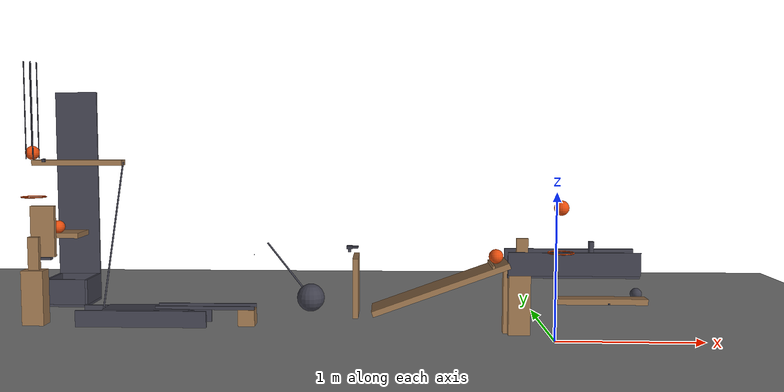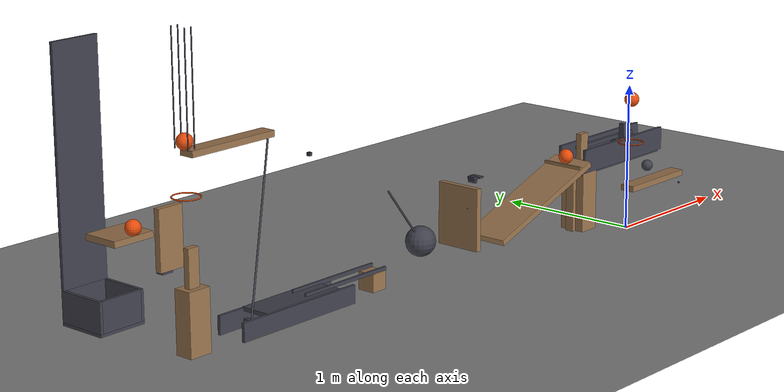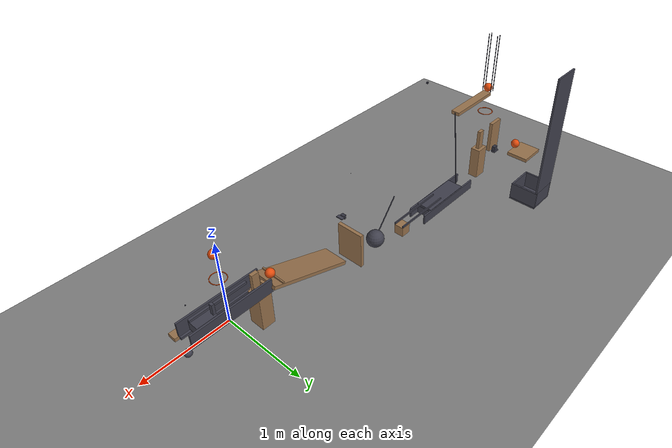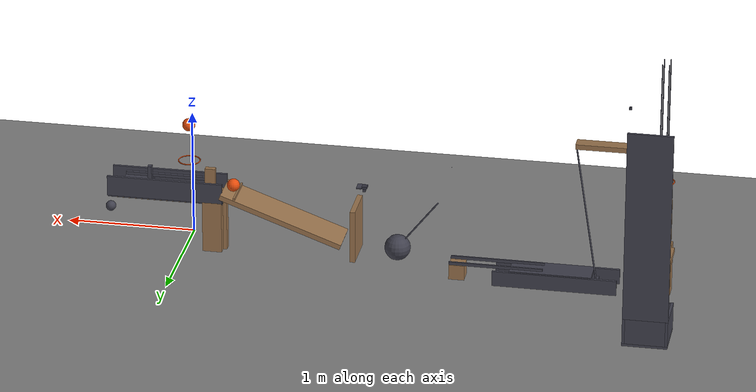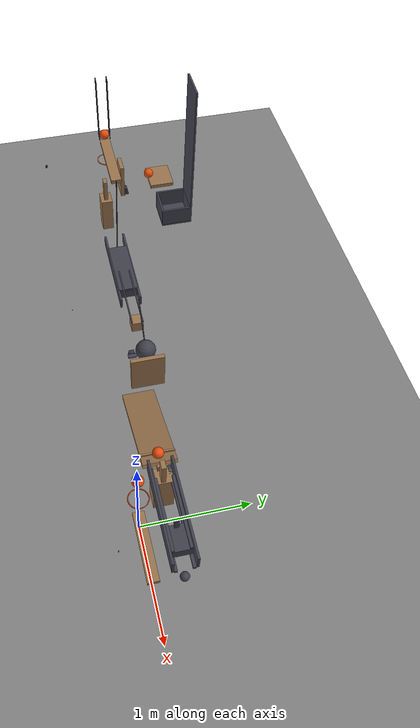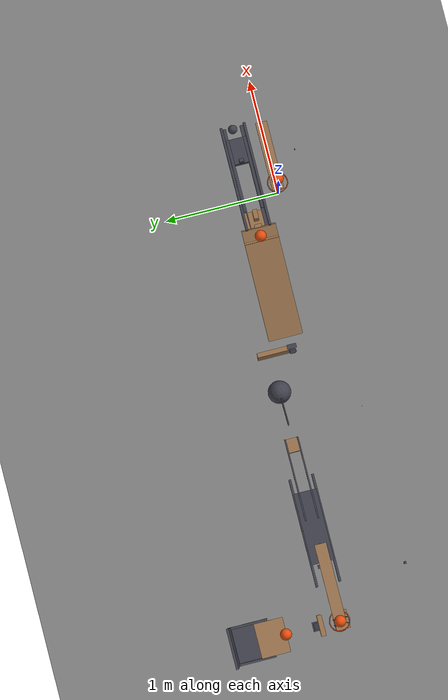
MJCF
<mujoco model="restrained_cascade_revision">
  <compiler angle="radian"/>
  <option timestep="0.002"/>
  <worldbody>
    <geom name="floor" type="plane" size="10 10 0.1" friction="0.72 0.005 0.002"/>
    <body name="ring1">
      <geom name="ring1_rim_00" type="capsule" size="0.004" fromto="0.115646 0 0.6 0.109126 0.0327752 0.6" friction="0.72 0.005 0.0001" solref="0.01 1" rgba="0.9 0.3 0.05 1"/>
      <geom name="ring1_rim_01" type="capsule" size="0.004" fromto="0.109126 0.0327752 0.6 0.0905606 0.0605606 0.6" friction="0.72 0.005 0.0001" solref="0.01 1" rgba="0.9 0.3 0.05 1"/>
      <geom name="ring1_rim_02" type="capsule" size="0.004" fromto="0.0905606 0.0605606 0.6 0.0627752 0.0791263 0.6" friction="0.72 0.005 0.0001" solref="0.01 1" rgba="0.9 0.3 0.05 1"/>
      <geom name="ring1_rim_03" type="capsule" size="0.004" fromto="0.0627752 0.0791263 0.6 0.03 0.0856457 0.6" friction="0.72 0.005 0.0001" solref="0.01 1" rgba="0.9 0.3 0.05 1"/>
      <geom name="ring1_rim_04" type="capsule" size="0.004" fromto="0.03 0.0856457 0.6 -0.00277517 0.0791263 0.6" friction="0.72 0.005 0.0001" solref="0.01 1" rgba="0.9 0.3 0.05 1"/>
      <geom name="ring1_rim_05" type="capsule" size="0.004" fromto="-0.00277517 0.0791263 0.6 -0.0305606 0.0605606 0.6" friction="0.72 0.005 0.0001" solref="0.01 1" rgba="0.9 0.3 0.05 1"/>
      <geom name="ring1_rim_06" type="capsule" size="0.004" fromto="-0.0305606 0.0605606 0.6 -0.0491263 0.0327752 0.6" friction="0.72 0.005 0.0001" solref="0.01 1" rgba="0.9 0.3 0.05 1"/>
      <geom name="ring1_rim_07" type="capsule" size="0.004" fromto="-0.0491263 0.0327752 0.6 -0.0556457 0 0.6" friction="0.72 0.005 0.0001" solref="0.01 1" rgba="0.9 0.3 0.05 1"/>
      <geom name="ring1_rim_08" type="capsule" size="0.004" fromto="-0.0556457 0 0.6 -0.0491263 -0.0327752 0.6" friction="0.72 0.005 0.0001" solref="0.01 1" rgba="0.9 0.3 0.05 1"/>
      <geom name="ring1_rim_09" type="capsule" size="0.004" fromto="-0.0491263 -0.0327752 0.6 -0.0305606 -0.0605606 0.6" friction="0.72 0.005 0.0001" solref="0.01 1" rgba="0.9 0.3 0.05 1"/>
      <geom name="ring1_rim_10" type="capsule" size="0.004" fromto="-0.0305606 -0.0605606 0.6 -0.00277517 -0.0791263 0.6" friction="0.72 0.005 0.0001" solref="0.01 1" rgba="0.9 0.3 0.05 1"/>
      <geom name="ring1_rim_11" type="capsule" size="0.004" fromto="-0.00277517 -0.0791263 0.6 0.03 -0.0856457 0.6" friction="0.72 0.005 0.0001" solref="0.01 1" rgba="0.9 0.3 0.05 1"/>
      <geom name="ring1_rim_12" type="capsule" size="0.004" fromto="0.03 -0.0856457 0.6 0.0627752 -0.0791263 0.6" friction="0.72 0.005 0.0001" solref="0.01 1" rgba="0.9 0.3 0.05 1"/>
      <geom name="ring1_rim_13" type="capsule" size="0.004" fromto="0.0627752 -0.0791263 0.6 0.0905606 -0.0605606 0.6" friction="0.72 0.005 0.0001" solref="0.01 1" rgba="0.9 0.3 0.05 1"/>
      <geom name="ring1_rim_14" type="capsule" size="0.004" fromto="0.0905606 -0.0605606 0.6 0.109126 -0.0327752 0.6" friction="0.72 0.005 0.0001" solref="0.01 1" rgba="0.9 0.3 0.05 1"/>
      <geom name="ring1_rim_15" type="capsule" size="0.004" fromto="0.109126 -0.0327752 0.6 0.115646 0 0.6" friction="0.72 0.005 0.0001" solref="0.01 1" rgba="0.9 0.3 0.05 1"/>
    </body>
    <body name="lever1" pos="0.3 0 0.28">
      <joint name="lever1_hinge" type="hinge" pos="0 0 0" axis="0 1 0" limited="true" range="-0.785398 0" damping="0.04"/>
      <geom name="lever1" type="box" pos="0 0 0" size="0.3 0.05 0.02" mass="0.5" friction="0.72 0.005 0.0001" solref="0.01 1" rgba="0.6 0.45 0.3 1"/>
      <geom name="lever gravity assist" type="box" pos="2e-05 -0.22 0.02" size="0.005 0.005 0.005" mass="600" friction="0.72 0.005 0.0001" solref="0.01 1" rgba="0.2 0.2 0.25 1"/>
      <geom name="lever striking head" type="sphere" pos="0.3 0.25 0" size="0.04" mass="0.005" friction="0.72 0.005 0.0001" solref="0.01 1" rgba="0.25 0.25 0.3 1"/>
    </body>
    <body name="ball1" pos="0.03 0 0.9">
      <freejoint/>
      <geom name="ball1" type="sphere" pos="0 0 0" size="0.05" mass="0.2" condim="6" friction="0.72 0.005 0.0001" solref="0.01 1" rgba="0.9 0.3 0.05 1"/>
    </body>
    <body name="cart1 left runner">
      <geom name="cart1 left runner" type="box" pos="0.15 0.324 0.4125" size="0.45 0.013 0.0125" friction="0.72 0.005 0.0001" solref="0.01 1" rgba="0.25 0.25 0.3 1"/>
    </body>
    <body name="cart1 right runner">
      <geom name="cart1 right runner" type="box" pos="0.15 0.176 0.4125" size="0.45 0.013 0.0125" friction="0.72 0.005 0.0001" solref="0.01 1" rgba="0.25 0.25 0.3 1"/>
    </body>
    <body name="cart1 left guide">
      <geom name="cart1 left guide" type="box" pos="0.15 0.351 0.5" size="0.45 0.01 0.08" friction="0.72 0.005 0.0001" solref="0.01 1" rgba="0.25 0.25 0.3 1"/>
    </body>
    <body name="cart1 right guide">
      <geom name="cart1 right guide" type="box" pos="0.15 0.149 0.5" size="0.45 0.01 0.08" friction="0.72 0.005 0.0001" solref="0.01 1" rgba="0.25 0.25 0.3 1"/>
    </body>
    <body name="cart1 left roof">
      <geom name="cart1 left roof" type="box" pos="0.175 0.325 0.5395" size="0.315 0.013 0.0125" friction="0.72 0.005 0.0001" solref="0.01 1" rgba="0.25 0.25 0.3 1"/>
    </body>
    <body name="cart1 right roof">
      <geom name="cart1 right roof" type="box" pos="0.175 0.175 0.5395" size="0.315 0.013 0.0125" friction="0.72 0.005 0.0001" solref="0.01 1" rgba="0.25 0.25 0.3 1"/>
    </body>
    <body name="cart1" pos="0.38 0.25 0.475">
      <freejoint/>
      <geom name="cart1" type="box" pos="0 0 0" size="0.11 0.09 0.05" mass="0.5" friction="0.72 0.005 0.0001" solref="0.01 1" rgba="0.25 0.25 0.3 1"/>
      <geom name="cart1 striking mast" type="box" pos="-0.095 0 0.11" size="0.015 0.02 0.06" mass="0.005" friction="0.72 0.005 0.0001" solref="0.01 1" rgba="0.25 0.25 0.3 1"/>
    </body>
    <body name="domino1 pedestal">
      <geom name="domino1 pedestal" type="box" pos="-0.215 0.25 0.2125" size="0.075 0.09 0.2125" friction="0.72 0.005 0.0001" solref="0.01 1" rgba="0.6 0.45 0.3 1"/>
    </body>
    <body name="domino1" pos="-0.19 0.25 0.545">
      <freejoint/>
      <geom name="domino1" type="box" pos="0 0 0" size="0.04 0.02 0.12" mass="0.25" friction="0.72 0.005 0.0001" solref="0.01 1" rgba="0.6 0.45 0.3 1"/>
    </body>
    <body name="ramp1">
      <geom name="ramp1_deck" type="box" pos="-0.759846 0.25 0.32101" size="0.5 0.15 0.02" euler="0 2.79253 0" friction="0.72 0.005 0.0001" solref="0.01 1" rgba="0.6 0.45 0.3 1"/>
      <geom name="ramp1_leg" type="box" pos="-0.29 0.25 0.24601" size="0.03 0.03 0.24601" friction="0.72 0.005 0.0001" solref="0.01 1" rgba="0.6 0.45 0.3 1"/>
    </body>
    <body name="ball2 retaining lip">
      <geom name="ball2 retaining lip" type="box" pos="-0.402 0.25 0.483" size="0.008 0.15 0.01" friction="0.72 0.005 0.0001" solref="0.01 1" rgba="0.6 0.45 0.3 1"/>
    </body>
    <body name="ball2" pos="-0.37 0.25 0.5374">
      <freejoint/>
      <geom name="ball2" type="sphere" pos="0 0 0" size="0.05" mass="0.2" condim="6" friction="0.72 0.005 0.0001" solref="0.01 1" rgba="0.9 0.3 0.05 1"/>
    </body>
    <body name="door1" pos="-1.34969 0.53 0.31">
      <joint name="door1_hinge" type="hinge" pos="0 0 0" axis="0 0 1" limited="true" range="-1.22173 0" stiffness="3.4" springref="-1.74533" damping="0.04"/>
      <geom name="door1" type="box" pos="0 -0.16 0" size="0.02 0.16 0.21" mass="0.45" friction="0.72 0.005 0.0001" solref="0.01 1" rgba="0.6 0.45 0.3 1"/>
      <geom name="door latch tab" type="box" pos="0 -0.3 0.29" size="0.02 0.04 0.005" mass="0.001" friction="0.72 0.005 0.0001" solref="0.01 1" rgba="0.25 0.25 0.3 1"/>
    </body>
    <body name="door latch pedestal">
      <geom name="door latch pedestal" type="box" pos="-1.38969 0.23 0.58" size="0.01 0.03 0.01" friction="0.72 0.005 0.0001" solref="0.01 1" rgba="0.25 0.25 0.3 1"/>
    </body>
    <body name="door latch" pos="-1.38969 0.23 0.6">
      <freejoint/>
      <geom name="door latch" type="box" pos="0 0 0" size="0.02 0.025 0.01" mass="3" friction="0.72 0.005 0.0001" solref="0.01 1" rgba="0.2 0.2 0.25 1"/>
    </body>
    <body name="pendulum1" pos="-1.9878 0.42 0.6">
      <joint name="pendulum1_hinge" type="hinge" pos="0 0 0" axis="0 1 0" limited="true" range="0 0.663225" damping="0.04"/>
      <geom name="pendulum1" type="sphere" pos="0.307831 0 -0.394005" size="0.1" mass="0.33" friction="0.72 0.005 0.0001" solref="0.01 1" rgba="0.25 0.25 0.3 1"/>
      <geom name="pendulum rod" type="capsule" size="0.006" fromto="0 0 0 0.307831 0 -0.394005" mass="0.02" friction="0.72 0.005 0.0001" solref="0.01 1" rgba="0.25 0.25 0.3 1"/>
      <geom name="pendulum gravity assist" type="box" pos="-4.4e-05 -0.64 0.01" size="0.002 0.002 0.002" mass="2500" friction="0.72 0.005 0.0001" solref="0.01 1" rgba="0.2 0.2 0.25 1"/>
    </body>
    <body name="block1 left roof">
      <geom name="block1 left roof" type="box" pos="-2.4438 0.475 0.1345" size="0.36 0.006 0.0125" friction="0.72 0.005 0.0001" solref="0.01 1" rgba="0.25 0.25 0.3 1"/>
    </body>
    <body name="block1 right roof">
      <geom name="block1 right roof" type="box" pos="-2.4438 0.365 0.1345" size="0.36 0.006 0.0125" friction="0.72 0.005 0.0001" solref="0.01 1" rgba="0.25 0.25 0.3 1"/>
    </body>
    <body name="block1" pos="-2.1438 0.42 0.06">
      <freejoint/>
      <geom name="block1" type="box" pos="0 0 0" size="0.06 0.06 0.06" mass="0.35" friction="0.72 0.005 0.0001" solref="0.01 1" rgba="0.6 0.45 0.3 1"/>
    </body>
    <body name="cart2 left guide">
      <geom name="cart2 left guide" type="box" pos="-2.9 0.521 0.06" size="0.475 0.01 0.06" friction="0.72 0.005 0.0001" solref="0.01 1" rgba="0.25 0.25 0.3 1"/>
    </body>
    <body name="cart2 right guide">
      <geom name="cart2 right guide" type="box" pos="-2.9 0.319 0.06" size="0.475 0.01 0.06" friction="0.72 0.005 0.0001" solref="0.01 1" rgba="0.25 0.25 0.3 1"/>
    </body>
    <body name="cart2 roof">
      <geom name="cart2 roof" type="box" pos="-2.8669 0.42 0.1145" size="0.3131 0.1 0.0125" friction="0.72 0.005 0.0001" solref="0.01 1" rgba="0.25 0.25 0.3 1"/>
    </body>
    <body name="cart2" pos="-2.6638 0.42 0.05">
      <freejoint/>
      <geom name="cart2" type="box" pos="0 0 0" size="0.11 0.09 0.05" mass="0.5" friction="0.72 0.005 0.0001" solref="0.01 1" rgba="0.25 0.25 0.3 1"/>
    </body>
    <body name="seesaw1" pos="-3.3588 0.42 1.18">
      <joint name="seesaw1_hinge" type="hinge" pos="0 0 0" axis="0 1 0" limited="true" range="0 0.733038" damping="0.04"/>
      <geom name="seesaw1" type="box" pos="0 0 0" size="0.325 0.05 0.02" mass="0.55" friction="0.72 0.005 0.0001" solref="0.01 1" rgba="0.6 0.45 0.3 1"/>
      <geom name="seesaw input rod" type="capsule" size="0.006" fromto="0.325 0 0 0.15 0 -1.13" mass="0.01" friction="0.72 0.005 0.0001" solref="0.01 1" rgba="0.25 0.25 0.3 1"/>
      <geom name="seesaw input pad" type="box" pos="0.15 0 -1.13" size="0.015 0.05 0.025" mass="0.005" friction="0.72 0.005 0.0001" solref="0.01 1" rgba="0.25 0.25 0.3 1"/>
      <geom name="seesaw gravity assist" type="box" pos="0.0005 -0.64 0.04" size="0.01 0.01 0.01" mass="100" friction="0.72 0.005 0.0001" solref="0.01 1" rgba="0.2 0.2 0.25 1"/>
    </body>
    <body name="ball3" pos="-3.6938 0.42 1.25">
      <freejoint/>
      <geom name="ball3" type="sphere" pos="0 0 0" size="0.05" mass="0.2" condim="6" friction="0.72 0.005 0.0001" solref="0.01 1" rgba="0.9 0.3 0.05 1"/>
    </body>
    <body name="ball3 guide">
      <geom name="ball3 guide_near_left_rail" type="capsule" size="0.004" fromto="-3.7188 0.4735 1.21 -3.7188 0.4735 1.9" friction="0.72 0.005 0.0001" solref="0.01 1" rgba="0.25 0.25 0.3 1"/>
      <geom name="ball3 guide_near_right_rail" type="capsule" size="0.004" fromto="-3.7188 0.3665 1.21 -3.7188 0.3665 1.9" friction="0.72 0.005 0.0001" solref="0.01 1" rgba="0.25 0.25 0.3 1"/>
      <geom name="ball3 guide_far_left_rail" type="capsule" size="0.004" fromto="-3.6688 0.4735 1.21 -3.6688 0.4735 1.9" friction="0.72 0.005 0.0001" solref="0.01 1" rgba="0.25 0.25 0.3 1"/>
      <geom name="ball3 guide_far_right_rail" type="capsule" size="0.004" fromto="-3.6688 0.3665 1.21 -3.6688 0.3665 1.9" friction="0.72 0.005 0.0001" solref="0.01 1" rgba="0.25 0.25 0.3 1"/>
    </body>
    <body name="ring2">
      <geom name="ring2_rim_00" type="capsule" size="0.004" fromto="-3.60815 0.42 0.93 -3.61467 0.452775 0.93" friction="0.72 0.005 0.0001" solref="0.01 1" rgba="0.9 0.3 0.05 1"/>
      <geom name="ring2_rim_01" type="capsule" size="0.004" fromto="-3.61467 0.452775 0.93 -3.63324 0.480561 0.93" friction="0.72 0.005 0.0001" solref="0.01 1" rgba="0.9 0.3 0.05 1"/>
      <geom name="ring2_rim_02" type="capsule" size="0.004" fromto="-3.63324 0.480561 0.93 -3.66102 0.499126 0.93" friction="0.72 0.005 0.0001" solref="0.01 1" rgba="0.9 0.3 0.05 1"/>
      <geom name="ring2_rim_03" type="capsule" size="0.004" fromto="-3.66102 0.499126 0.93 -3.6938 0.505646 0.93" friction="0.72 0.005 0.0001" solref="0.01 1" rgba="0.9 0.3 0.05 1"/>
      <geom name="ring2_rim_04" type="capsule" size="0.004" fromto="-3.6938 0.505646 0.93 -3.72658 0.499126 0.93" friction="0.72 0.005 0.0001" solref="0.01 1" rgba="0.9 0.3 0.05 1"/>
      <geom name="ring2_rim_05" type="capsule" size="0.004" fromto="-3.72658 0.499126 0.93 -3.75436 0.480561 0.93" friction="0.72 0.005 0.0001" solref="0.01 1" rgba="0.9 0.3 0.05 1"/>
      <geom name="ring2_rim_06" type="capsule" size="0.004" fromto="-3.75436 0.480561 0.93 -3.77293 0.452775 0.93" friction="0.72 0.005 0.0001" solref="0.01 1" rgba="0.9 0.3 0.05 1"/>
      <geom name="ring2_rim_07" type="capsule" size="0.004" fromto="-3.77293 0.452775 0.93 -3.77945 0.42 0.93" friction="0.72 0.005 0.0001" solref="0.01 1" rgba="0.9 0.3 0.05 1"/>
      <geom name="ring2_rim_08" type="capsule" size="0.004" fromto="-3.77945 0.42 0.93 -3.77293 0.387225 0.93" friction="0.72 0.005 0.0001" solref="0.01 1" rgba="0.9 0.3 0.05 1"/>
      <geom name="ring2_rim_09" type="capsule" size="0.004" fromto="-3.77293 0.387225 0.93 -3.75436 0.359439 0.93" friction="0.72 0.005 0.0001" solref="0.01 1" rgba="0.9 0.3 0.05 1"/>
      <geom name="ring2_rim_10" type="capsule" size="0.004" fromto="-3.75436 0.359439 0.93 -3.72658 0.340874 0.93" friction="0.72 0.005 0.0001" solref="0.01 1" rgba="0.9 0.3 0.05 1"/>
      <geom name="ring2_rim_11" type="capsule" size="0.004" fromto="-3.72658 0.340874 0.93 -3.6938 0.334354 0.93" friction="0.72 0.005 0.0001" solref="0.01 1" rgba="0.9 0.3 0.05 1"/>
      <geom name="ring2_rim_12" type="capsule" size="0.004" fromto="-3.6938 0.334354 0.93 -3.66102 0.340874 0.93" friction="0.72 0.005 0.0001" solref="0.01 1" rgba="0.9 0.3 0.05 1"/>
      <geom name="ring2_rim_13" type="capsule" size="0.004" fromto="-3.66102 0.340874 0.93 -3.63324 0.359439 0.93" friction="0.72 0.005 0.0001" solref="0.01 1" rgba="0.9 0.3 0.05 1"/>
      <geom name="ring2_rim_14" type="capsule" size="0.004" fromto="-3.63324 0.359439 0.93 -3.61467 0.387225 0.93" friction="0.72 0.005 0.0001" solref="0.01 1" rgba="0.9 0.3 0.05 1"/>
      <geom name="ring2_rim_15" type="capsule" size="0.004" fromto="-3.61467 0.387225 0.93 -3.60815 0.42 0.93" friction="0.72 0.005 0.0001" solref="0.01 1" rgba="0.9 0.3 0.05 1"/>
    </body>
    <body name="domino2 pedestal">
      <geom name="domino2 pedestal" type="box" pos="-3.6938 0.395 0.2" size="0.08 0.06 0.2" friction="0.72 0.005 0.0001" solref="0.01 1" rgba="0.6 0.45 0.3 1"/>
    </body>
    <body name="domino2" pos="-3.6938 0.395 0.52">
      <freejoint/>
      <geom name="domino2" type="box" pos="0 0 0" size="0.04 0.02 0.12" mass="0.25" friction="0.72 0.005 0.0001" solref="0.01 1" rgba="0.6 0.45 0.3 1"/>
    </body>
    <body name="flap1" pos="-3.6938 0.575 0.85">
      <joint name="flap1_hinge" type="hinge" pos="0 0 0" axis="1 0 0" limited="true" range="0 1.0472" stiffness="0.9" springref="1.5708" damping="0.04"/>
      <geom name="flap1" type="box" pos="0 0 -0.19" size="0.09 0.02 0.19" mass="0.28" friction="0.72 0.005 0.0001" solref="0.01 1" rgba="0.6 0.45 0.3 1"/>
    </body>
    <body name="flap latch pedestal">
      <geom name="flap latch pedestal" type="box" pos="-3.6938 0.62 0.45" size="0.04 0.025 0.01" friction="0.72 0.005 0.0001" solref="0.01 1" rgba="0.25 0.25 0.3 1"/>
    </body>
    <body name="flap latch" pos="-3.6938 0.615 0.485">
      <freejoint/>
      <geom name="flap latch" type="box" pos="0 0 0" size="0.03 0.02 0.025" mass="0.8" friction="0.72 0.005 0.0001" solref="0.01 1" rgba="0.2 0.2 0.25 1"/>
    </body>
    <body name="cup1">
      <geom name="cup1_base" type="box" pos="-3.6938 1.175 0.01" size="0.17 0.17 0.01" friction="0.72 0.005 0.0001" solref="0.01 1" rgba="0.25 0.25 0.3 1"/>
      <geom name="cup1_near_wall" type="box" pos="-3.8538 1.175 0.12" size="0.01 0.17 0.1" friction="0.72 0.005 0.0001" solref="0.01 1" rgba="0.25 0.25 0.3 1"/>
      <geom name="cup1_far_wall" type="box" pos="-3.5338 1.175 0.12" size="0.01 0.17 0.1" friction="0.72 0.005 0.0001" solref="0.01 1" rgba="0.25 0.25 0.3 1"/>
      <geom name="cup1_left_wall" type="box" pos="-3.6938 1.335 0.12" size="0.15 0.01 0.1" friction="0.72 0.005 0.0001" solref="0.01 1" rgba="0.25 0.25 0.3 1"/>
      <geom name="cup1_right_wall" type="box" pos="-3.6938 1.015 0.12" size="0.15 0.01 0.1" friction="0.72 0.005 0.0001" solref="0.01 1" rgba="0.25 0.25 0.3 1"/>
    </body>
    <body name="shelf1">
      <geom name="shelf1" type="box" pos="-3.6938 1 0.59" size="0.15 0.125 0.02" friction="0.72 0.005 0.0001" solref="0.01 1" rgba="0.6 0.45 0.3 1"/>
    </body>
    <body name="ball4" pos="-3.6938 0.88 0.66">
      <freejoint/>
      <geom name="ball4" type="sphere" pos="0 0 0" size="0.05" mass="0.2" condim="6" friction="0.72 0.005 0.0001" solref="0.01 1" rgba="0.9 0.3 0.05 1"/>
    </body>
    <body name="cup catch screen">
      <geom name="cup catch screen" type="box" pos="-3.6938 1.335 0.97" size="0.17 0.01 0.75" friction="0.72 0.005 0.0001" solref="0.01 1" rgba="0.25 0.25 0.3 1"/>
    </body>
  </worldbody>
  <keyframe>
    <key name="start" qpos="0 0.03 0 0.9 1 0 0 0 0.38 0.25 0.475 1 0 0 0 -0.19 0.25 0.545 1 0 0 0 -0.37 0.25 0.5374 1 0 0 0 0 -1.38969 0.23 0.6 1 0 0 0 0 -2.1438 0.42 0.06 1 0 0 0 -2.6638 0.42 0.05 1 0 0 0 0 -3.6938 0.42 1.25 1 0 0 0 -3.6938 0.395 0.52 1 0 0 0 0 -3.6938 0.615 0.485 1 0 0 0 -3.6938 0.88 0.66 1 0 0 0" qvel="0 0 0 0 0 0 0 0 0 0 0 0 0 0 0 0 0 0 0 0 0 0 0 0 0 0 0 0 0 0 0 0 0 0 0 0 0 0 0 0 0 0 0 0 0 0 0 0 0 0 0 0 0 0 0 0 0 0 0 0 0 0 0 0 0 0 0 0 0 0 0"/>
  </keyframe>
</mujoco>
